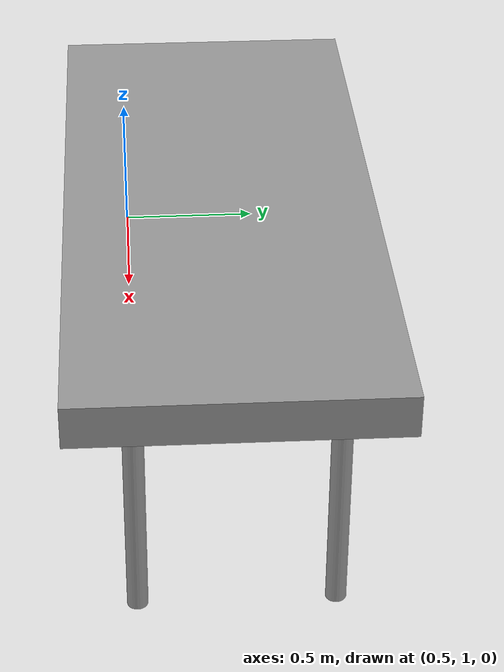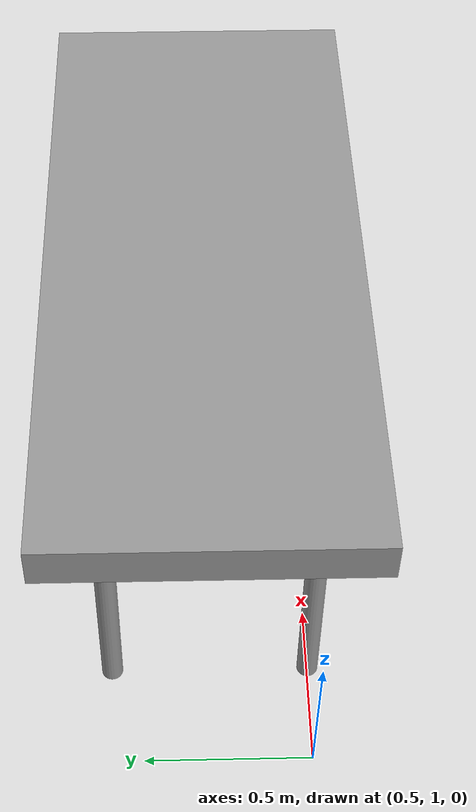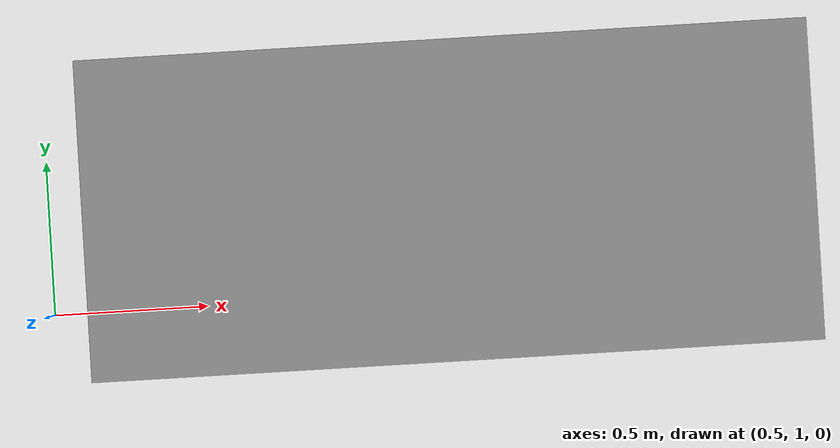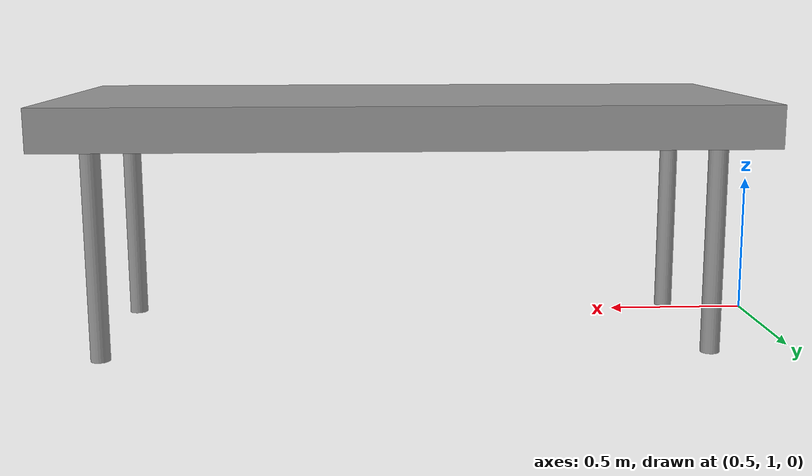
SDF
<?xml version='1.0'?>
<sdf version='1.6'>
  <model name='banco'>
    <link name='link'>
      <inertial>
        <mass>0.00278324</mass>
        <inertia>
          <ixx>0.00011088</ixx>
          <ixy>0</ixy>
          <ixz>0</ixz>
          <iyy>0.00011088</iyy>
          <iyz>0</iyz>
          <izz>1.4e-06</izz>
        </inertia>
        <pose frame=''>0 0 0 0 -0 0</pose>
      </inertial>
      <self_collide>0</self_collide>
      <enable_wind>0</enable_wind>
      <kinematic>0</kinematic>
      <pose frame=''>0.8 1 0.357402 0 -0 0</pose>
      <gravity>1</gravity>
      <visual name='visual'>
        <geometry>
          <cylinder>
            <radius>0.0317717</radius>
            <length>0.689213</length>
          </cylinder>
        </geometry>
        <material>
          <script>
            <name>Gazebo/Grey</name>
            <uri>file://media/materials/scripts/gazebo.material</uri>
          </script>
          <shader type='vertex'>
            <normal_map>__default__</normal_map>
          </shader>
          <ambient>0.3 0.3 0.3 1</ambient>
          <diffuse>0.7 0.7 0.7 1</diffuse>
          <specular>0.01 0.01 0.01 1</specular>
          <emissive>0 0 0 1</emissive>
        </material>
        <pose frame=''>0 0 0 0 -0 0</pose>
        <transparency>0</transparency>
        <cast_shadows>1</cast_shadows>
      </visual>
      <collision name='collision'>
        <laser_retro>0</laser_retro>
        <max_contacts>10</max_contacts>
        <pose frame=''>0 0 0 0 -0 0</pose>
        <geometry>
          <cylinder>
            <radius>0.031772</radius>
            <length>0.689213</length>
          </cylinder>
        </geometry>
        <surface>
          <friction>
            <ode>
              <mu>1</mu>
              <mu2>1</mu2>
              <fdir1>0 0 0</fdir1>
              <slip1>0</slip1>
              <slip2>0</slip2>
            </ode>
            <torsional>
              <coefficient>1</coefficient>
              <patch_radius>0</patch_radius>
              <surface_radius>0</surface_radius>
              <use_patch_radius>1</use_patch_radius>
              <ode>
                <slip>0</slip>
              </ode>
            </torsional>
          </friction>
          <bounce>
            <restitution_coefficient>0</restitution_coefficient>
            <threshold>1e+06</threshold>
          </bounce>
          <contact>
            <collide_without_contact>0</collide_without_contact>
            <collide_without_contact_bitmask>1</collide_without_contact_bitmask>
            <collide_bitmask>1</collide_bitmask>
            <ode>
              <soft_cfm>0</soft_cfm>
              <soft_erp>0.2</soft_erp>
              <kp>1e+13</kp>
              <kd>1</kd>
              <max_vel>0.01</max_vel>
              <min_depth>0</min_depth>
            </ode>
            <bullet>
              <split_impulse>1</split_impulse>
              <split_impulse_penetration_threshold>-0.01</split_impulse_penetration_threshold>
              <soft_cfm>0</soft_cfm>
              <soft_erp>0.2</soft_erp>
              <kp>1e+13</kp>
              <kd>1</kd>
            </bullet>
          </contact>
        </surface>
      </collision>
    </link>
    <link name='link_0'>
      <inertial>
        <mass>1.02974</mass>
        <inertia>
          <ixx>0.0873926</ixx>
          <ixy>0</ixy>
          <ixz>0</ixz>
          <iyy>0.446702</iyy>
          <iyz>0</iyz>
          <izz>0.530933</izz>
        </inertia>
        <pose frame=''>0 0 0 0 -0 0</pose>
      </inertial>
      <pose frame=''>1.8 1.3 0.78 -3e-06 -4e-06 -0</pose>
      <gravity>1</gravity>
      <self_collide>0</self_collide>
      <kinematic>0</kinematic>
      <enable_wind>0</enable_wind>
      <visual name='visual'>
        <pose frame=''>0 0 0 0 -0 0</pose>
        <geometry>
          <box>
            <size>2.27754 1 0.135737</size>
          </box>
        </geometry>
        <material>
          <lighting>1</lighting>
          <script>
            <uri>file://media/materials/scripts/gazebo.material</uri>
            <name>Gazebo/Grey</name>
          </script>
          <shader type='vertex'>
            <normal_map>__default__</normal_map>
          </shader>
          <ambient>0.3 0.3 0.3 1</ambient>
          <diffuse>0.7 0.7 0.7 1</diffuse>
          <specular>0.01 0.01 0.01 1</specular>
          <emissive>0 0 0 1</emissive>
        </material>
        <transparency>0</transparency>
        <cast_shadows>1</cast_shadows>
      </visual>
      <collision name='collision'>
        <laser_retro>0</laser_retro>
        <max_contacts>10</max_contacts>
        <pose frame=''>0 0 0 0 -0 0</pose>
        <geometry>
          <box>
            <size>2.27754 1 0.135737</size>
          </box>
        </geometry>
        <surface>
          <friction>
            <ode>
              <mu>1</mu>
              <mu2>1</mu2>
              <fdir1>0 0 0</fdir1>
              <slip1>0</slip1>
              <slip2>0</slip2>
            </ode>
            <torsional>
              <coefficient>1</coefficient>
              <patch_radius>0</patch_radius>
              <surface_radius>0</surface_radius>
              <use_patch_radius>1</use_patch_radius>
              <ode>
                <slip>0</slip>
              </ode>
            </torsional>
          </friction>
          <bounce>
            <restitution_coefficient>0</restitution_coefficient>
            <threshold>1e+06</threshold>
          </bounce>
          <contact>
            <collide_without_contact>0</collide_without_contact>
            <collide_without_contact_bitmask>1</collide_without_contact_bitmask>
            <collide_bitmask>1</collide_bitmask>
            <ode>
              <soft_cfm>0</soft_cfm>
              <soft_erp>0.2</soft_erp>
              <kp>1e+13</kp>
              <kd>1</kd>
              <max_vel>0.01</max_vel>
              <min_depth>0</min_depth>
            </ode>
            <bullet>
              <split_impulse>1</split_impulse>
              <split_impulse_penetration_threshold>-0.01</split_impulse_penetration_threshold>
              <soft_cfm>0</soft_cfm>
              <soft_erp>0.2</soft_erp>
              <kp>1e+13</kp>
              <kd>1</kd>
            </bullet>
          </contact>
        </surface>
      </collision>
    </link>
    <link name='link_clone_1'>
      <inertial>
        <mass>0.00278324</mass>
        <inertia>
          <ixx>0.00011087</ixx>
          <ixy>0</ixy>
          <ixz>0</ixz>
          <iyy>0.00011087</iyy>
          <iyz>0</iyz>
          <izz>1.4e-06</izz>
        </inertia>
        <pose frame=''>0 0 0 0 -0 0</pose>
      </inertial>
      <self_collide>0</self_collide>
      <enable_wind>0</enable_wind>
      <kinematic>0</kinematic>
      <pose frame=''>2.8 1.6 0.357402 0 -0 0</pose>
      <gravity>1</gravity>
      <visual name='visual'>
        <geometry>
          <cylinder>
            <radius>0.0317717</radius>
            <length>0.689213</length>
          </cylinder>
        </geometry>
        <material>
          <script>
            <name>Gazebo/Grey</name>
            <uri>file://media/materials/scripts/gazebo.material</uri>
          </script>
          <shader type='vertex'>
            <normal_map>__default__</normal_map>
          </shader>
          <ambient>0.3 0.3 0.3 1</ambient>
          <diffuse>0.7 0.7 0.7 1</diffuse>
          <specular>0.01 0.01 0.01 1</specular>
          <emissive>0 0 0 1</emissive>
        </material>
        <pose frame=''>0 0 0 0 -0 0</pose>
        <transparency>0</transparency>
        <cast_shadows>1</cast_shadows>
      </visual>
      <collision name='collision'>
        <laser_retro>0</laser_retro>
        <max_contacts>10</max_contacts>
        <pose frame=''>0 0 0 0 -0 0</pose>
        <geometry>
          <cylinder>
            <radius>0.031772</radius>
            <length>0.689213</length>
          </cylinder>
        </geometry>
        <surface>
          <friction>
            <ode>
              <mu>1</mu>
              <mu2>1</mu2>
              <fdir1>0 0 0</fdir1>
              <slip1>0</slip1>
              <slip2>0</slip2>
            </ode>
            <torsional>
              <coefficient>1</coefficient>
              <patch_radius>0</patch_radius>
              <surface_radius>0</surface_radius>
              <use_patch_radius>1</use_patch_radius>
              <ode>
                <slip>0</slip>
              </ode>
            </torsional>
          </friction>
          <bounce>
            <restitution_coefficient>0</restitution_coefficient>
            <threshold>1e+06</threshold>
          </bounce>
          <contact>
            <collide_without_contact>0</collide_without_contact>
            <collide_without_contact_bitmask>1</collide_without_contact_bitmask>
            <collide_bitmask>1</collide_bitmask>
            <ode>
              <soft_cfm>0</soft_cfm>
              <soft_erp>0.2</soft_erp>
              <kp>1e+13</kp>
              <kd>1</kd>
              <max_vel>0.01</max_vel>
              <min_depth>0</min_depth>
            </ode>
            <bullet>
              <split_impulse>1</split_impulse>
              <split_impulse_penetration_threshold>-0.01</split_impulse_penetration_threshold>
              <soft_cfm>0</soft_cfm>
              <soft_erp>0.2</soft_erp>
              <kp>1e+13</kp>
              <kd>1</kd>
            </bullet>
          </contact>
        </surface>
      </collision>
    </link>
    <link name='link_clone_2'>
      <inertial>
        <mass>0.00278324</mass>
        <inertia>
          <ixx>0.00011087</ixx>
          <ixy>0</ixy>
          <ixz>0</ixz>
          <iyy>0.00011087</iyy>
          <iyz>0</iyz>
          <izz>1.4e-06</izz>
        </inertia>
        <pose frame=''>0 0 0 0 -0 0</pose>
      </inertial>
      <self_collide>0</self_collide>
      <enable_wind>0</enable_wind>
      <kinematic>0</kinematic>
      <pose frame=''>0.8 1.6 0.357402 0 -0 0</pose>
      <gravity>1</gravity>
      <visual name='visual'>
        <geometry>
          <cylinder>
            <radius>0.0317717</radius>
            <length>0.689213</length>
          </cylinder>
        </geometry>
        <material>
          <script>
            <name>Gazebo/Grey</name>
            <uri>file://media/materials/scripts/gazebo.material</uri>
          </script>
          <shader type='vertex'>
            <normal_map>__default__</normal_map>
          </shader>
          <ambient>0.3 0.3 0.3 1</ambient>
          <diffuse>0.7 0.7 0.7 1</diffuse>
          <specular>0.01 0.01 0.01 1</specular>
          <emissive>0 0 0 1</emissive>
        </material>
        <pose frame=''>0 0 0 0 -0 0</pose>
        <transparency>0</transparency>
        <cast_shadows>1</cast_shadows>
      </visual>
      <collision name='collision'>
        <laser_retro>0</laser_retro>
        <max_contacts>10</max_contacts>
        <pose frame=''>0 0 0 0 -0 0</pose>
        <geometry>
          <cylinder>
            <radius>0.031772</radius>
            <length>0.689213</length>
          </cylinder>
        </geometry>
        <surface>
          <friction>
            <ode>
              <mu>1</mu>
              <mu2>1</mu2>
              <fdir1>0 0 0</fdir1>
              <slip1>0</slip1>
              <slip2>0</slip2>
            </ode>
            <torsional>
              <coefficient>1</coefficient>
              <patch_radius>0</patch_radius>
              <surface_radius>0</surface_radius>
              <use_patch_radius>1</use_patch_radius>
              <ode>
                <slip>0</slip>
              </ode>
            </torsional>
          </friction>
          <bounce>
            <restitution_coefficient>0</restitution_coefficient>
            <threshold>1e+06</threshold>
          </bounce>
          <contact>
            <collide_without_contact>0</collide_without_contact>
            <collide_without_contact_bitmask>1</collide_without_contact_bitmask>
            <collide_bitmask>1</collide_bitmask>
            <ode>
              <soft_cfm>0</soft_cfm>
              <soft_erp>0.2</soft_erp>
              <kp>1e+13</kp>
              <kd>1</kd>
              <max_vel>0.01</max_vel>
              <min_depth>0</min_depth>
            </ode>
            <bullet>
              <split_impulse>1</split_impulse>
              <split_impulse_penetration_threshold>-0.01</split_impulse_penetration_threshold>
              <soft_cfm>0</soft_cfm>
              <soft_erp>0.2</soft_erp>
              <kp>1e+13</kp>
              <kd>1</kd>
            </bullet>
          </contact>
        </surface>
      </collision>
    </link>
    <link name='link_clone_2_clone'>
      <inertial>
        <mass>0.00278324</mass>
        <inertia>
          <ixx>0.00011087</ixx>
          <ixy>0</ixy>
          <ixz>0</ixz>
          <iyy>0.00011087</iyy>
          <iyz>0</iyz>
          <izz>1.4e-06</izz>
        </inertia>
        <pose frame=''>0 0 0 0 -0 0</pose>
      </inertial>
      <self_collide>0</self_collide>
      <enable_wind>0</enable_wind>
      <kinematic>0</kinematic>
      <pose frame=''>2.8 1 0.357402 0 -0 0</pose>
      <gravity>1</gravity>
      <visual name='visual'>
        <geometry>
          <cylinder>
            <radius>0.0317717</radius>
            <length>0.689213</length>
          </cylinder>
        </geometry>
        <material>
          <script>
            <name>Gazebo/Grey</name>
            <uri>file://media/materials/scripts/gazebo.material</uri>
          </script>
          <shader type='vertex'>
            <normal_map>__default__</normal_map>
          </shader>
          <ambient>0.3 0.3 0.3 1</ambient>
          <diffuse>0.7 0.7 0.7 1</diffuse>
          <specular>0.01 0.01 0.01 1</specular>
          <emissive>0 0 0 1</emissive>
        </material>
        <pose frame=''>0 0 0 0 -0 0</pose>
        <transparency>0</transparency>
        <cast_shadows>1</cast_shadows>
      </visual>
      <collision name='collision'>
        <laser_retro>0</laser_retro>
        <max_contacts>10</max_contacts>
        <pose frame=''>0 0 0 0 -0 0</pose>
        <geometry>
          <cylinder>
            <radius>0.031772</radius>
            <length>0.689213</length>
          </cylinder>
        </geometry>
        <surface>
          <friction>
            <ode>
              <mu>1</mu>
              <mu2>1</mu2>
              <fdir1>0 0 0</fdir1>
              <slip1>0</slip1>
              <slip2>0</slip2>
            </ode>
            <torsional>
              <coefficient>1</coefficient>
              <patch_radius>0</patch_radius>
              <surface_radius>0</surface_radius>
              <use_patch_radius>1</use_patch_radius>
              <ode>
                <slip>0</slip>
              </ode>
            </torsional>
          </friction>
          <bounce>
            <restitution_coefficient>0</restitution_coefficient>
            <threshold>1e+06</threshold>
          </bounce>
          <contact>
            <collide_without_contact>0</collide_without_contact>
            <collide_without_contact_bitmask>1</collide_without_contact_bitmask>
            <collide_bitmask>1</collide_bitmask>
            <ode>
              <soft_cfm>0</soft_cfm>
              <soft_erp>0.2</soft_erp>
              <kp>1e+13</kp>
              <kd>1</kd>
              <max_vel>0.01</max_vel>
              <min_depth>0</min_depth>
            </ode>
            <bullet>
              <split_impulse>1</split_impulse>
              <split_impulse_penetration_threshold>-0.01</split_impulse_penetration_threshold>
              <soft_cfm>0</soft_cfm>
              <soft_erp>0.2</soft_erp>
              <kp>1e+13</kp>
              <kd>1</kd>
            </bullet>
          </contact>
        </surface>
      </collision>
    </link>
    <joint name='link_0_JOINT_0' type='fixed'>
      <parent>link_0</parent>
      <child>link_clone_2</child>
      <pose frame=''>0 0 0 0 -0 0</pose>
      <physics>
        <ode>
          <limit>
            <cfm>0</cfm>
            <erp>0.2</erp>
          </limit>
          <suspension>
            <cfm>0</cfm>
            <erp>0.2</erp>
          </suspension>
        </ode>
      </physics>
    </joint>
    <joint name='link_0_JOINT_1' type='fixed'>
      <parent>link_0</parent>
      <child>link_clone_1</child>
      <pose frame=''>0 0 0 0 -0 0</pose>
      <physics>
        <ode>
          <limit>
            <cfm>0</cfm>
            <erp>0.2</erp>
          </limit>
          <suspension>
            <cfm>0</cfm>
            <erp>0.2</erp>
          </suspension>
        </ode>
      </physics>
    </joint>
    <joint name='link_0_JOINT_2_0' type='fixed'>
      <parent>link_0</parent>
      <child>link_clone_2_clone</child>
      <pose frame=''>0 0 0 0 -0 0</pose>
      <physics>
        <ode>
          <limit>
            <cfm>0</cfm>
            <erp>0.2</erp>
          </limit>
          <suspension>
            <cfm>0</cfm>
            <erp>0.2</erp>
          </suspension>
        </ode>
      </physics>
    </joint>
    <joint name='link_0_JOINT_2' type='fixed'>
      <parent>link_0</parent>
      <child>link</child>
      <pose frame=''>0 0 0 0 -0 0</pose>
      <physics>
        <ode>
          <limit>
            <cfm>0</cfm>
            <erp>0.2</erp>
          </limit>
          <suspension>
            <cfm>0</cfm>
            <erp>0.2</erp>
          </suspension>
        </ode>
      </physics>
    </joint>
    <static>0</static>
    <allow_auto_disable>1</allow_auto_disable>
  </model>
</sdf>
